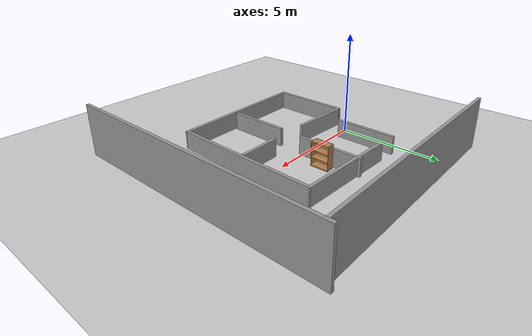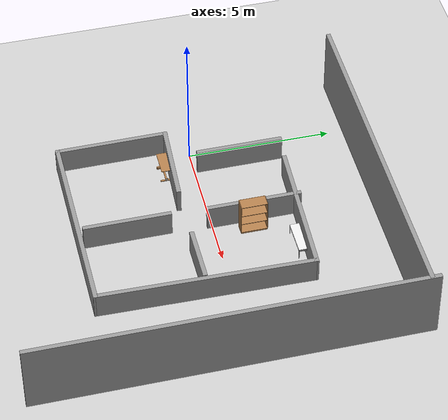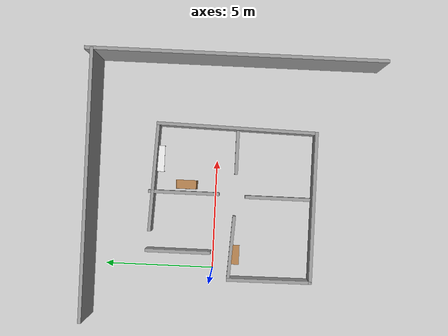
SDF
<sdf version="1.7">
 <world name="default">
  <light name="sun" type="directional">
   <pose>0 0 10 0 -0 0</pose>
   <diffuse>0.8 0.8 0.8 1</diffuse>
   <specular>0.2 0.2 0.2 1</specular>
   <attenuation>
    <range>1000</range>
    <constant>0.9</constant>
    <linear>0.01</linear>
    <quadratic>0.001</quadratic>
   </attenuation>
   <direction>-0.5 0.1 -0.9</direction>
   <spot><inner_angle>0</inner_angle><outer_angle>0</outer_angle><falloff>0</falloff></spot>
  </light>
  <model name="ground_plane">
   <static>1</static>
   <link name="link">
    <collision name="collision">
     <geometry><plane><normal>0 0 1</normal><size>100 100</size></plane></geometry>
     <surface><friction><ode><mu>100</mu><mu2>50</mu2></ode></friction></surface>
    </collision>
    <visual name="visual">
     <cast_shadows>0</cast_shadows>
     <geometry><plane><normal>0 0 1</normal><size>100 100</size></plane></geometry>
     <material>
      <script><uri>file://media/materials/scripts/gazebo.material</uri><name>Gazebo/Grey</name></script>
     </material>
    </visual>
   </link>
  </model>
  <gravity>0 0 -9.8</gravity>
  <magnetic_field>6e-06 2.3e-05 -4.2e-05</magnetic_field>
  <atmosphere type="adiabatic"/>
  <physics type="ode">
   <max_step_size>0.001</max_step_size>
   <real_time_factor>1</real_time_factor>
   <real_time_update_rate>1000</real_time_update_rate>
  </physics>
  <scene><ambient>0.4 0.4 0.4 1</ambient><background>0.7 0.7 0.7 1</background><shadows>1</shadows></scene>
  <spherical_coordinates>
   <surface_model>EARTH_WGS84</surface_model>
   <latitude_deg>0</latitude_deg>
   <longitude_deg>0</longitude_deg>
   <elevation>0</elevation>
   <heading_deg>0</heading_deg>
  </spherical_coordinates>
  <model name="TMR2024">
   <pose>3.6537 -0.70559 0 0 -0 0</pose>
   <link name="Wall_0">
    <collision name="Wall_0_Collision">
     <geometry><box><size>7 0.15 0.9</size></box></geometry>
     <pose>0 0 0.45 0 -0 0</pose>
    </collision>
    <visual name="Wall_0_Visual">
     <pose>0 0 0.45 0 -0 0</pose>
     <geometry><box><size>7 0.15 0.9</size></box></geometry>
     <material>
      <script><uri>file://media/materials/scripts/gazebo.material</uri><name>Gazebo/Grey</name></script>
      <ambient>1 1 1 1</ambient>
     </material>
     <meta><layer>0</layer></meta>
    </visual>
    <pose>-0.622244 -3.81451 0 0 -0 3.14159</pose>
   </link>
   <link name="Wall_10">
    <collision name="Wall_10_Collision">
     <geometry><box><size>3 0.15 0.9</size></box></geometry>
     <pose>0 0 0.45 0 -0 0</pose>
    </collision>
    <visual name="Wall_10_Visual">
     <pose>0 0 0.45 0 -0 0</pose>
     <geometry><box><size>3 0.15 0.9</size></box></geometry>
     <material>
      <script><uri>file://media/materials/scripts/gazebo.material</uri><name>Gazebo/Grey</name></script>
      <ambient>1 1 1 1</ambient>
     </material>
     <meta><layer>0</layer></meta>
    </visual>
    <pose>-2.88724 2.31049 0 0 -0 -1.5708</pose>
   </link>
   <link name="Wall_12">
    <collision name="Wall_12_Collision">
     <geometry><box><size>2 0.15 0.9</size></box></geometry>
     <pose>0 0 0.45 0 -0 0</pose>
    </collision>
    <visual name="Wall_12_Visual">
     <pose>0 0 0.45 0 -0 0</pose>
     <geometry><box><size>2 0.15 0.9</size></box></geometry>
     <material>
      <script><uri>file://media/materials/scripts/gazebo.material</uri><name>Gazebo/Grey</name></script>
      <ambient>1 1 1 1</ambient>
     </material>
     <meta><layer>0</layer></meta>
    </visual>
    <pose>1.76676 -0.204514 0 0 -0 0</pose>
   </link>
   <link name="Wall_14">
    <collision name="Wall_14_Collision">
     <geometry><box><size>3 0.15 0.9</size></box></geometry>
     <pose>0 0 0.45 0 -0 0</pose>
    </collision>
    <visual name="Wall_14_Visual">
     <pose>0 0 0.45 0 -0 0</pose>
     <geometry><box><size>3 0.15 0.9</size></box></geometry>
     <material>
      <script><uri>file://media/materials/scripts/gazebo.material</uri><name>Gazebo/Grey</name></script>
      <ambient>1 1 1 1</ambient>
     </material>
     <meta><layer>0</layer></meta>
    </visual>
    <pose>-0.249243 -2.15651 0 0 -0 -1.5708</pose>
   </link>
   <link name="Wall_16">
    <collision name="Wall_16_Collision">
     <geometry><box><size>3.25 0.15 0.9</size></box></geometry>
     <pose>0 0 0.45 0 -0 0</pose>
    </collision>
    <visual name="Wall_16_Visual">
     <pose>0 0 0.45 0 -0 0</pose>
     <geometry><box><size>3.25 0.15 0.9</size></box></geometry>
     <material>
      <script><uri>file://media/materials/scripts/gazebo.material</uri><name>Gazebo/Grey</name></script>
      <ambient>1 1 1 1</ambient>
     </material>
     <meta><layer>0</layer></meta>
    </visual>
    <pose>-0.178244 2.15449 0 0 -0 1.5708</pose>
   </link>
   <link name="Wall_18">
    <collision name="Wall_18_Collision">
     <geometry><box><size>12 0.15 2.5</size></box></geometry>
     <pose>0 0 1.25 0 -0 0</pose>
    </collision>
    <visual name="Wall_18_Visual">
     <pose>0 0 1.25 0 -0 0</pose>
     <geometry><box><size>12 0.15 2.5</size></box></geometry>
     <material>
      <script><uri>file://media/materials/scripts/gazebo.material</uri><name>Gazebo/Grey</name></script>
      <ambient>1 1 1 1</ambient>
     </material>
     <meta><layer>0</layer></meta>
    </visual>
    <pose>-0.01759 6.30375 0 0 -0 3.14159</pose>
   </link>
   <link name="Wall_2">
    <collision name="Wall_2_Collision">
     <geometry><box><size>3.91962 0.15 0.9</size></box></geometry>
     <pose>0 0 0.45 0 -0 0</pose>
    </collision>
    <visual name="Wall_2_Visual">
     <pose>0 0 0.45 0 -0 0</pose>
     <geometry><box><size>3.91962 0.15 0.9</size></box></geometry>
     <material>
      <script><uri>file://media/materials/scripts/gazebo.material</uri><name>Gazebo/Grey</name></script>
      <ambient>1 1 1 1</ambient>
     </material>
     <meta><layer>0</layer></meta>
    </visual>
    <pose>-4.05974 -1.92951 0 0 -0 -1.56417</pose>
   </link>
   <link name="Wall_21">
    <collision name="Wall_21_Collision">
     <geometry><box><size>13.25 0.15 2.5</size></box></geometry>
     <pose>0 0 1.25 0 -0 0</pose>
    </collision>
    <visual name="Wall_21_Visual">
     <pose>0 0 1.25 0 -0 0</pose>
     <geometry><box><size>13.25 0.15 2.5</size></box></geometry>
     <material>
      <script><uri>file://media/materials/scripts/gazebo.material</uri><name>Gazebo/Grey</name></script>
      <ambient>1 1 1 1</ambient>
     </material>
     <meta><layer>0</layer></meta>
    </visual>
    <pose>5.94259 -0 0 0 -0 -1.5708</pose>
   </link>
   <link name="Wall_4">
    <collision name="Wall_4_Collision">
     <geometry><box><size>3.00069 0.15 0.9</size></box></geometry>
     <pose>0 0 0.45 0 -0 0</pose>
    </collision>
    <visual name="Wall_4_Visual">
     <pose>0 0 0.45 0 -0 0</pose>
     <geometry><box><size>3.00069 0.15 0.9</size></box></geometry>
     <material>
      <script><uri>file://media/materials/scripts/gazebo.material</uri><name>Gazebo/Grey</name></script>
      <ambient>1 1 1 1</ambient>
     </material>
     <meta><layer>0</layer></meta>
    </visual>
    <pose>-2.64874 -0.124514 0 0 -0 3.08545</pose>
   </link>
   <link name="Wall_6">
    <collision name="Wall_6_Collision">
     <geometry><box><size>7.42009 0.15 0.9</size></box></geometry>
     <pose>0 0 0.45 0 -0 0</pose>
    </collision>
    <visual name="Wall_6_Visual">
     <pose>0 0 0.45 0 -0 0</pose>
     <geometry><box><size>7.42009 0.15 0.9</size></box></geometry>
     <material>
      <script><uri>file://media/materials/scripts/gazebo.material</uri><name>Gazebo/Grey</name></script>
      <ambient>1 1 1 1</ambient>
     </material>
     <meta><layer>0</layer></meta>
    </visual>
    <pose>2.87776 -0.180014 0 0 -0 -1.59143</pose>
   </link>
   <link name="Wall_8">
    <collision name="Wall_8_Collision">
     <geometry><box><size>5.0444 0.15 0.9</size></box></geometry>
     <pose>0 0 0.45 0 -0 0</pose>
    </collision>
    <visual name="Wall_8_Visual">
     <pose>0 0 0.45 0 -0 0</pose>
     <geometry><box><size>5.0444 0.15 0.9</size></box></geometry>
     <material>
      <script><uri>file://media/materials/scripts/gazebo.material</uri><name>Gazebo/Grey</name></script>
      <ambient>1 1 1 1</ambient>
     </material>
     <meta><layer>0</layer></meta>
    </visual>
    <pose>0.507756 3.55999 0 0 -0 -0.043123</pose>
   </link>
   <static>1</static>
  </model>
  <model name="bed_table_0">
   <link name="link">
    <inertial>
     <pose>0 0.449 0.001 0 -0 0</pose>
     <mass>10</mass>
     <inertia><ixx>1</ixx><ixy>0</ixy><ixz>0</ixz><iyy>1</iyy><iyz>0</iyz><izz>1</izz></inertia>
    </inertial>
    <visual name="top_board">
     <pose>0 0.449 0.625 0 -0 0</pose>
     <geometry><box><size>0.398 0.898 0.02</size></box></geometry>
     <material>
      <script><uri>model://base_materials/wood/scripts/wood.material</uri><name>base_materials/wood</name></script>
     </material>
    </visual>
    <collision name="collision_top_board">
     <pose>0 0.449 0.625 0 -0 0</pose>
     <geometry><box><size>0.398 0.898 0.02</size></box></geometry>
    </collision>
    <visual name="right_pole">
     <pose>0 0.817 0.3515 0 -0 0</pose>
     <geometry><box><size>0.072 0.094 0.527</size></box></geometry>
     <material>
      <script><uri>model://base_materials/color/scripts</uri><name>hsr_color/grey</name></script>
     </material>
    </visual>
    <collision name="collision_right_pole">
     <pose>0 0.817 0.3515 0 -0 0</pose>
     <geometry><box><size>0.072 0.094 0.527</size></box></geometry>
    </collision>
    <visual name="right_bottom_pole">
     <pose>0 0.8225 0.044 0 -0 0</pose>
     <geometry><box><size>0.42 0.063 0.088</size></box></geometry>
     <material>
      <script><uri>model://base_materials/wood/scripts/wood.material</uri><name>base_materials/wood</name></script>
     </material>
    </visual>
    <collision name="collision_right_bottom_pole">
     <pose>0 0.8225 0.044 0 -0 0</pose>
     <geometry><box><size>0.42 0.063 0.088</size></box></geometry>
    </collision>
    <visual name="bottom_center_pole">
     <pose>0 0.502 0.03 0 -0 0</pose>
     <geometry><box><size>0.06 0.578 0.03</size></box></geometry>
     <material>
      <script><uri>model://base_materials/wood/scripts/wood.material</uri><name>base_materials/wood</name></script>
     </material>
    </visual>
    <collision name="collision_bottom_center_pole">
     <pose>0 0.502 0.03 0 -0 0</pose>
     <geometry><box><size>0.06 0.578 0.03</size></box></geometry>
    </collision>
    <visual name="left_bottom_pole">
     <pose>0 0.18 0.0325 0 -0 0</pose>
     <geometry><box><size>0.418 0.066 0.025</size></box></geometry>
     <material>
      <script><uri>model://base_materials/wood/scripts/wood.material</uri><name>base_materials/wood</name></script>
     </material>
    </visual>
    <collision name="collision_left_bottom_pole">
     <pose>0 0.18 0.0325 0 -0 0</pose>
     <geometry><box><size>0.418 0.066 0.025</size></box></geometry>
    </collision>
    <visual name="marker_0010">
     <pose>0 0.14 0.093 0 -0 0</pose>
     <geometry><box><size>0.09 0.001 0.09</size></box></geometry>
     <material>
      <script>
       <uri>model://bed_table/marker/0010/scripts</uri>
       <uri>model://bed_table/marker/0010/textures</uri>
       <name>Marker/0010</name>
      </script>
     </material>
    </visual>
    <collision name="collision_marker_0010">
     <pose>0 0.14 0.093 0 -0 0</pose>
     <geometry><box><size>0.09 0.001 0.09</size></box></geometry>
    </collision>
    <visual name="marker_0010_back_plate">
     <pose>0 0.146 0.093 0 -0 0</pose>
     <geometry><box><size>0.09 0.01 0.09</size></box></geometry>
     <material>
      <script><uri>model://base_materials/wood/scripts/wood.material</uri><name>base_materials/wood</name></script>
     </material>
    </visual>
    <collision name="collision_marker_0010_back_plate">
     <pose>0 0.146 0.093 0 -0 0</pose>
     <geometry><box><size>0.09 0.01 0.09</size></box></geometry>
    </collision>
    <velocity_decay><linear>0</linear><angular>0</angular></velocity_decay>
   </link>
   <static>1</static>
   <pose>1.1665 -1.01817 0 0 -0 1.5696</pose>
  </model>
  <model name="bookshelf">
   <static>1</static>
   <link name="link">
    <inertial><mass>1</mass></inertial>
    <collision name="back">
     <pose>0 0.005 0.6 0 -0 0</pose>
     <geometry><box><size>0.9 0.01 1.2</size></box></geometry>
    </collision>
    <visual name="visual1">
     <pose>0 0.005 0.6 0 -0 0</pose>
     <geometry><box><size>0.9 0.01 1.2</size></box></geometry>
     <material>
      <script><uri>file://media/materials/scripts/gazebo.material</uri><name>Gazebo/Wood</name></script>
     </material>
    </visual>
    <collision name="left_side">
     <pose>0.45 -0.195 0.6 0 -0 0</pose>
     <geometry><box><size>0.02 0.4 1.2</size></box></geometry>
    </collision>
    <visual name="visual2">
     <pose>0.45 -0.195 0.6 0 -0 0</pose>
     <geometry><box><size>0.02 0.4 1.2</size></box></geometry>
     <material>
      <script><uri>file://media/materials/scripts/gazebo.material</uri><name>Gazebo/Wood</name></script>
     </material>
    </visual>
    <collision name="right_side">
     <pose>-0.45 -0.195 0.6 0 -0 0</pose>
     <geometry><box><size>0.02 0.4 1.2</size></box></geometry>
    </collision>
    <visual name="visual3">
     <pose>-0.45 -0.195 0.6 0 -0 0</pose>
     <geometry><box><size>0.02 0.4 1.2</size></box></geometry>
     <material>
      <script><uri>file://media/materials/scripts/gazebo.material</uri><name>Gazebo/Wood</name></script>
     </material>
    </visual>
    <collision name="bottom">
     <pose>0 -0.195 0.03 0 -0 0</pose>
     <geometry><box><size>0.88 0.4 0.06</size></box></geometry>
    </collision>
    <visual name="visual4">
     <pose>0 -0.195 0.03 0 -0 0</pose>
     <geometry><box><size>0.88 0.4 0.06</size></box></geometry>
     <material>
      <script><uri>file://media/materials/scripts/gazebo.material</uri><name>Gazebo/Wood</name></script>
     </material>
    </visual>
    <collision name="top">
     <pose>0 -0.195 1.19 0 -0 0</pose>
     <geometry><box><size>0.88 0.4 0.02</size></box></geometry>
    </collision>
    <visual name="visual5">
     <pose>0 -0.195 1.19 0 -0 0</pose>
     <geometry><box><size>0.88 0.4 0.02</size></box></geometry>
     <material>
      <script><uri>file://media/materials/scripts/gazebo.material</uri><name>Gazebo/Wood</name></script>
     </material>
    </visual>
    <collision name="low_shelf">
     <pose>0 -0.195 0.43 0 -0 0</pose>
     <geometry><box><size>0.88 0.4 0.02</size></box></geometry>
    </collision>
    <visual name="visual6">
     <pose>0 -0.195 0.43 0 -0 0</pose>
     <geometry><box><size>0.88 0.4 0.02</size></box></geometry>
     <material>
      <script><uri>file://media/materials/scripts/gazebo.material</uri><name>Gazebo/Wood</name></script>
     </material>
    </visual>
    <collision name="high_shelf">
     <pose>0 -0.195 0.8 0 -0 0</pose>
     <geometry><box><size>0.88 0.4 0.02</size></box></geometry>
    </collision>
    <visual name="visual7">
     <pose>0 -0.195 0.8 0 -0 0</pose>
     <geometry><box><size>0.88 0.4 0.02</size></box></geometry>
     <material>
      <script><uri>file://media/materials/scripts/gazebo.material</uri><name>Gazebo/Wood</name></script>
     </material>
    </visual>
   </link>
   <pose>3.66477 1.32298 0 0 -0 1.5708</pose>
  </model>
  <model name="wrc_long_table">
   <static>1</static>
   <link name="link">
    <inertial><mass>1</mass></inertial>
    <collision name="top">
     <pose>0 0 0.39 0 -0 0</pose>
     <geometry><box><size>1.2 0.4 0.02</size></box></geometry>
    </collision>
    <visual name="top_v">
     <pose>0 0 0.39 0 -0 0</pose>
     <geometry><box><size>1.2 0.4 0.02</size></box></geometry>
     <material>
      <script><uri>file://media/materials/scripts/gazebo.material</uri><name>Gazebo/White</name></script>
     </material>
    </visual>
    <collision name="leg1">
     <pose>0.59 0.19 0.185 0 -0 0</pose>
     <geometry><box><size>0.02 0.02 0.4</size></box></geometry>
    </collision>
    <visual name="leg1_v">
     <pose>0.59 0.19 0.185 0 -0 0</pose>
     <geometry><box><size>0.02 0.02 0.4</size></box></geometry>
     <material>
      <script><uri>file://media/materials/scripts/gazebo.material</uri><name>Gazebo/Gray</name></script>
     </material>
    </visual>
    <collision name="leg2">
     <pose>-0.59 0.19 0.185 0 -0 0</pose>
     <geometry><box><size>0.02 0.02 0.4</size></box></geometry>
    </collision>
    <visual name="leg2_v">
     <pose>-0.59 0.19 0.185 0 -0 0</pose>
     <geometry><box><size>0.02 0.02 0.4</size></box></geometry>
     <material>
      <script><uri>file://media/materials/scripts/gazebo.material</uri><name>Gazebo/Gray</name></script>
     </material>
    </visual>
    <collision name="leg3">
     <pose>0.59 -0.19 0.185 0 -0 0</pose>
     <geometry><box><size>0.02 0.02 0.4</size></box></geometry>
    </collision>
    <visual name="leg3_v">
     <pose>0.59 -0.19 0.185 0 -0 0</pose>
     <geometry><box><size>0.02 0.02 0.4</size></box></geometry>
     <material>
      <script><uri>file://media/materials/scripts/gazebo.material</uri><name>Gazebo/Gray</name></script>
     </material>
    </visual>
    <collision name="leg4">
     <pose>-0.59 -0.19 0.185 0 -0 0</pose>
     <geometry><box><size>0.02 0.02 0.4</size></box></geometry>
    </collision>
    <visual name="leg4_v">
     <pose>-0.59 -0.19 0.185 0 -0 0</pose>
     <geometry><box><size>0.02 0.02 0.4</size></box></geometry>
     <material>
      <script><uri>file://media/materials/scripts/gazebo.material</uri><name>Gazebo/Gray</name></script>
     </material>
    </visual>
    <collision name="side_panel1">
     <pose>0.575 0 0.32 0 -0 0</pose>
     <geometry><box><size>0.01 0.4 0.04</size></box></geometry>
    </collision>
    <visual name="side_panel1_v">
     <pose>0.575 0 0.32 0 -0 0</pose>
     <geometry><box><size>0.01 0.4 0.04</size></box></geometry>
     <material>
      <script><uri>file://media/materials/scripts/gazebo.material</uri><name>Gazebo/Gray</name></script>
     </material>
    </visual>
    <collision name="side_panel2">
     <pose>-0.575 0 0.32 0 -0 0</pose>
     <geometry><box><size>0.01 0.4 0.04</size></box></geometry>
    </collision>
    <visual name="side_panel2_v">
     <pose>-0.575 0 0.32 0 -0 0</pose>
     <geometry><box><size>0.01 0.4 0.04</size></box></geometry>
     <material>
      <script><uri>file://media/materials/scripts/gazebo.material</uri><name>Gazebo/Gray</name></script>
     </material>
    </visual>
    <collision name="bar1">
     <pose>0 0.2 0.29 0 1.57 0</pose>
     <geometry><cylinder><radius>0.01</radius><length>1.16</length></cylinder></geometry>
    </collision>
    <visual name="bar1_v">
     <pose>0 0.19 0.29 0 1.57 0</pose>
     <geometry><cylinder><radius>0.01</radius><length>1.16</length></cylinder></geometry>
     <material>
      <script><uri>file://media/materials/scripts/gazebo.material</uri><name>Gazebo/Gray</name></script>
     </material>
    </visual>
    <collision name="bar2">
     <pose>0 0.08 0.29 0 1.57 0</pose>
     <geometry><cylinder><radius>0.01</radius><length>1.16</length></cylinder></geometry>
    </collision>
    <visual name="bar2_v">
     <pose>0 0.08 0.29 0 1.57 0</pose>
     <geometry><cylinder><radius>0.01</radius><length>1.16</length></cylinder></geometry>
     <material>
      <script><uri>file://media/materials/scripts/gazebo.material</uri><name>Gazebo/Gray</name></script>
     </material>
    </visual>
    <collision name="bar3">
     <pose>0 0 0.29 0 1.57 0</pose>
     <geometry><cylinder><radius>0.01</radius><length>1.16</length></cylinder></geometry>
    </collision>
    <visual name="bar3_v">
     <pose>0 0 0.29 0 1.57 0</pose>
     <geometry><cylinder><radius>0.01</radius><length>1.16</length></cylinder></geometry>
     <material>
      <script><uri>file://media/materials/scripts/gazebo.material</uri><name>Gazebo/Gray</name></script>
     </material>
    </visual>
    <collision name="bar4">
     <pose>0 -0.08 0.29 0 1.57 0</pose>
     <geometry><cylinder><radius>0.01</radius><length>1.16</length></cylinder></geometry>
    </collision>
    <visual name="bar4_v">
     <pose>0 -0.09 0.29 0 1.57 0</pose>
     <geometry><cylinder><radius>0.01</radius><length>1.16</length></cylinder></geometry>
     <material>
      <script><uri>file://media/materials/scripts/gazebo.material</uri><name>Gazebo/Gray</name></script>
     </material>
    </visual>
    <collision name="bar5">
     <pose>0 -0.18 0.29 0 1.57 0</pose>
     <geometry><cylinder><radius>0.01</radius><length>1.16</length></cylinder></geometry>
    </collision>
    <visual name="bar5_v">
     <pose>0 -0.18 0.29 0 1.57 0</pose>
     <geometry><cylinder><radius>0.01</radius><length>1.16</length></cylinder></geometry>
     <material>
      <script><uri>file://media/materials/scripts/gazebo.material</uri><name>Gazebo/Gray</name></script>
     </material>
    </visual>
   </link>
   <pose>5.00861 2.63933 0 0 -0 0</pose>
  </model>
 </world>
</sdf>
